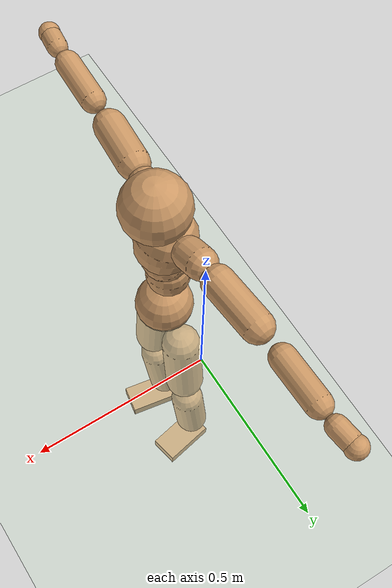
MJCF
<mujoco model="humanoid">
  <compiler coordinate="local"/>
  <default>
    <joint damping="0.0" armature="0.01" stiffness="0.0" limited="true"/>
    <geom conaffinity="1" condim="3" contype="7" margin="0.001" rgba="0.8 0.6 .4 1"/>
  </default>
  <asset>
    <texture type="skybox" builtin="gradient" rgb1=".4 .5 .6" rgb2="0 0 0" width="100" height="100"/>
    <texture builtin="flat" height="1278" mark="cross" markrgb="1 1 1" name="texgeom" random="0.01" rgb1="0.8 0.6 0.4" rgb2="0.8 0.6 0.4" type="cube" width="127"/>
    <texture builtin="checker" height="100" name="texplane" rgb1="0 0 0" rgb2="0.8 0.8 0.8" type="2d" width="100"/>
    <material name="MatPlane" reflectance="0.5" shininess="1" specular="1" texrepeat="60 60" texture="texplane"/>
    <material name="geom" texture="texgeom" texuniform="true"/>
  </asset>
  <worldbody>
    <light cutoff="100" diffuse="1 1 1" dir="-0 0 -1.3" directional="true" exponent="1" pos="0 0 1.3" specular=".1 .1 .1"/>
    <geom conaffinity="1" condim="3" name="floor" pos="0 0 0" rgba="0.8 0.9 0.8 1" size="100 100 .2" type="plane" material="MatPlane"/>
    <body name="Pelvis" pos="-0.0027 -0.1978 0.0166">
      <freejoint name="Pelvis"/>
      <geom type="sphere" contype="1" conaffinity="1" density="500" size="0.0830" pos="0.0000 0.0000 0.0000" name="Pelvis"/>
      <body name="L_Hip" pos="-0.0127 0.0625 -0.0852">
        <joint name="L_Hip_x" type="hinge" pos="0 0 0" axis="1 0 0" stiffness="800" damping="80" armature="0.02" range="-180.0000 180.0000"/>
        <joint name="L_Hip_y" type="hinge" pos="0 0 0" axis="0 1 0" stiffness="800" damping="80" armature="0.02" range="-180.0000 180.0000"/>
        <joint name="L_Hip_z" type="hinge" pos="0 0 0" axis="0 0 1" stiffness="800" damping="80" armature="0.02" range="-180.0000 180.0000"/>
        <geom type="capsule" contype="1" conaffinity="1" density="500" fromto="-0.0001 0.0068 -0.0724 -0.0002 0.0272 -0.2896" size="0.0571" name="L_Hip"/>
        <body name="L_Knee" pos="-0.0003 0.034 -0.362">
          <joint name="L_Knee_x" type="hinge" pos="0 0 0" axis="1 0 0" stiffness="800" damping="80" armature="0.02" range="-180.0000 180.0000"/>
          <joint name="L_Knee_y" type="hinge" pos="0 0 0" axis="0 1 0" stiffness="800" damping="80" armature="0.02" range="-180.0000 180.0000"/>
          <joint name="L_Knee_z" type="hinge" pos="0 0 0" axis="0 0 1" stiffness="800" damping="80" armature="0.02" range="-180.0000 180.0000"/>
          <geom type="capsule" contype="1" conaffinity="1" density="500" fromto="-0.0079 -0.0023 -0.0747 -0.0316 -0.0092 -0.2987" size="0.0496" name="L_Knee"/>
          <body name="L_Ankle" pos="-0.0395 -0.0116 -0.3734">
            <joint name="L_Ankle_x" type="hinge" pos="0 0 0" axis="1 0 0" stiffness="800" damping="80" armature="0.02" range="-180.0000 180.0000"/>
            <joint name="L_Ankle_y" type="hinge" pos="0 0 0" axis="0 1 0" stiffness="800" damping="80" armature="0.02" range="-180.0000 180.0000"/>
            <joint name="L_Ankle_z" type="hinge" pos="0 0 0" axis="0 0 1" stiffness="800" damping="80" armature="0.02" range="-180.0000 180.0000"/>
            <geom type="box" contype="1" conaffinity="1" density="500" pos="0.0553 0.0112 -0.0260" size="0.0795 0.0432 0.0188" quat="0.9950 0.0000 0.0000 0.0997" name="L_Ankle"/>
            <body name="L_Toe" pos="0.1107 0.0224 -0.052">
              <joint name="L_Toe_x" type="hinge" pos="0 0 0" axis="1 0 0" stiffness="500" damping="50" armature="0.02" range="-180.0000 180.0000"/>
              <joint name="L_Toe_y" type="hinge" pos="0 0 0" axis="0 1 0" stiffness="500" damping="50" armature="0.02" range="-180.0000 180.0000"/>
              <joint name="L_Toe_z" type="hinge" pos="0 0 0" axis="0 0 1" stiffness="500" damping="50" armature="0.02" range="-180.0000 180.0000"/>
              <geom type="box" contype="1" conaffinity="1" density="500" pos="0.0000 0.0000 0.0255" size="0.0009 0.0022 0.0009" quat="0.9943 0.0000 0.0000 0.1065" name="L_Toe"/>
            </body>
          </body>
        </body>
      </body>
      <body name="R_Hip" pos="-0.0098 -0.0609 -0.0843">
        <joint name="R_Hip_x" type="hinge" pos="0 0 0" axis="1 0 0" stiffness="800" damping="80" armature="0.02" range="-180.0000 180.0000"/>
        <joint name="R_Hip_y" type="hinge" pos="0 0 0" axis="0 1 0" stiffness="800" damping="80" armature="0.02" range="-180.0000 180.0000"/>
        <joint name="R_Hip_z" type="hinge" pos="0 0 0" axis="0 0 1" stiffness="800" damping="80" armature="0.02" range="-180.0000 180.0000"/>
        <geom type="capsule" contype="1" conaffinity="1" density="500" fromto="-0.0009 -0.0075 -0.0736 -0.0035 -0.0299 -0.2942" size="0.0563" name="R_Hip"/>
        <body name="R_Knee" pos="-0.0044 -0.0373 -0.3678">
          <joint name="R_Knee_x" type="hinge" pos="0 0 0" axis="1 0 0" stiffness="800" damping="80" armature="0.02" range="-180.0000 180.0000"/>
          <joint name="R_Knee_y" type="hinge" pos="0 0 0" axis="0 1 0" stiffness="800" damping="80" armature="0.02" range="-180.0000 180.0000"/>
          <joint name="R_Knee_z" type="hinge" pos="0 0 0" axis="0 0 1" stiffness="800" damping="80" armature="0.02" range="-180.0000 180.0000"/>
          <geom type="capsule" contype="1" conaffinity="1" density="500" fromto="-0.0076 0.0028 -0.0744 -0.0305 0.0112 -0.2975" size="0.0499" name="R_Knee"/>
          <body name="R_Ankle" pos="-0.0381 0.0141 -0.3719">
            <joint name="R_Ankle_x" type="hinge" pos="0 0 0" axis="1 0 0" stiffness="800" damping="80" armature="0.02" range="-180.0000 180.0000"/>
            <joint name="R_Ankle_y" type="hinge" pos="0 0 0" axis="0 1 0" stiffness="800" damping="80" armature="0.02" range="-180.0000 180.0000"/>
            <joint name="R_Ankle_z" type="hinge" pos="0 0 0" axis="0 0 1" stiffness="800" damping="80" armature="0.02" range="-180.0000 180.0000"/>
            <geom type="box" contype="1" conaffinity="1" density="500" pos="0.0570 -0.0095 -0.0220" size="0.0808 0.044 0.0185" quat="0.9966 0.0000 0.0000 -0.0827" name="R_Ankle"/>
            <body name="R_Toe" pos="0.1141 -0.0191 -0.044">
              <joint name="R_Toe_x" type="hinge" pos="0 0 0" axis="1 0 0" stiffness="500" damping="50" armature="0.02" range="-180.0000 180.0000"/>
              <joint name="R_Toe_y" type="hinge" pos="0 0 0" axis="0 1 0" stiffness="500" damping="50" armature="0.02" range="-180.0000 180.0000"/>
              <joint name="R_Toe_z" type="hinge" pos="0 0 0" axis="0 0 1" stiffness="500" damping="50" armature="0.02" range="-180.0000 180.0000"/>
              <geom type="box" contype="1" conaffinity="1" density="500" pos="0.0000 0.0000 0.0239" size="0.0008 0.0022 0.001" quat="0.9973 0.0000 0.0000 -0.0729" name="R_Toe"/>
            </body>
          </body>
        </body>
      </body>
      <body name="Torso" pos="-0.0156 -0.0026 0.0987">
        <joint name="Torso_x" type="hinge" pos="0 0 0" axis="1 0 0" stiffness="1000" damping="100" armature="0.02" range="-180.0000 180.0000"/>
        <joint name="Torso_y" type="hinge" pos="0 0 0" axis="0 1 0" stiffness="1000" damping="100" armature="0.02" range="-180.0000 180.0000"/>
        <joint name="Torso_z" type="hinge" pos="0 0 0" axis="0 0 1" stiffness="1000" damping="100" armature="0.02" range="-180.0000 180.0000"/>
        <geom type="capsule" contype="1" conaffinity="1" density="500" fromto="0.0013 0.0028 0.0777 0.0009 0.0018 0.0518" size="0.0617" name="Torso"/>
        <body name="Spine" pos="0.0021 0.0046 0.1295">
          <joint name="Spine_x" type="hinge" pos="0 0 0" axis="1 0 0" stiffness="1000" damping="100" armature="0.02" range="-180.0000 180.0000"/>
          <joint name="Spine_y" type="hinge" pos="0 0 0" axis="0 1 0" stiffness="1000" damping="100" armature="0.02" range="-180.0000 180.0000"/>
          <joint name="Spine_z" type="hinge" pos="0 0 0" axis="0 0 1" stiffness="1000" damping="100" armature="0.02" range="-180.0000 180.0000"/>
          <geom type="capsule" contype="1" conaffinity="1" density="500" fromto="0.0139 0.0014 0.0283 0.0093 0.0009 0.0189" size="0.0619" name="Spine"/>
          <body name="Chest" pos="0.0232 0.0023 0.0472">
            <joint name="Chest_x" type="hinge" pos="0 0 0" axis="1 0 0" stiffness="1000" damping="100" armature="0.02" range="-180.0000 180.0000"/>
            <joint name="Chest_y" type="hinge" pos="0 0 0" axis="0 1 0" stiffness="1000" damping="100" armature="0.02" range="-180.0000 180.0000"/>
            <joint name="Chest_z" type="hinge" pos="0 0 0" axis="0 0 1" stiffness="1000" damping="100" armature="0.02" range="-180.0000 180.0000"/>
            <geom type="capsule" contype="1" conaffinity="1" density="500" fromto="-0.0193 -0.0009 0.0784 -0.0129 -0.0006 0.0522" size="0.0833" name="Chest"/>
            <body name="Neck" pos="-0.0349 -0.0028 0.1838">
              <joint name="Neck_x" type="hinge" pos="0 0 0" axis="1 0 0" stiffness="500" damping="50" armature="0.02" range="-180.0000 180.0000"/>
              <joint name="Neck_y" type="hinge" pos="0 0 0" axis="0 1 0" stiffness="500" damping="50" armature="0.02" range="-180.0000 180.0000"/>
              <joint name="Neck_z" type="hinge" pos="0 0 0" axis="0 0 1" stiffness="500" damping="50" armature="0.02" range="-180.0000 180.0000"/>
              <geom type="capsule" contype="1" conaffinity="1" density="500" fromto="0.0095 0.0010 0.0120 0.0382 0.0039 0.0481" size="0.0382" name="Neck"/>
              <body name="Head" pos="0.0477 0.0048 0.0601">
                <joint name="Head_x" type="hinge" pos="0 0 0" axis="1 0 0" stiffness="500" damping="50" armature="0.02" range="-180.0000 180.0000"/>
                <joint name="Head_y" type="hinge" pos="0 0 0" axis="0 1 0" stiffness="500" damping="50" armature="0.02" range="-180.0000 180.0000"/>
                <joint name="Head_z" type="hinge" pos="0 0 0" axis="0 0 1" stiffness="500" damping="50" armature="0.02" range="-180.0000 180.0000"/>
                <geom type="sphere" contype="1" conaffinity="1" density="500" size="0.0937" pos="0.0000 0.0000 0.0000" name="Head"/>
              </body>
            </body>
            <body name="L_Thorax" pos="-0.0287 0.0692 0.1052">
              <joint name="L_Thorax_x" type="hinge" pos="0 0 0" axis="1 0 0" stiffness="500" damping="50" armature="0.02" range="-180.0000 180.0000"/>
              <joint name="L_Thorax_y" type="hinge" pos="0 0 0" axis="0 1 0" stiffness="500" damping="50" armature="0.02" range="-180.0000 180.0000"/>
              <joint name="L_Thorax_z" type="hinge" pos="0 0 0" axis="0 0 1" stiffness="500" damping="50" armature="0.02" range="-180.0000 180.0000"/>
              <geom type="capsule" contype="1" conaffinity="1" density="500" fromto="-0.0012 0.0161 0.0061 -0.0048 0.0644 0.0245" size="0.0447" name="L_Thorax"/>
              <body name="L_Shoulder" pos="-0.0059 0.0805 0.0307">
                <joint name="L_Shoulder_x" type="hinge" pos="0 0 0" axis="1 0 0" stiffness="500" damping="50" armature="0.02" range="-720.0000 720.0000"/>
                <joint name="L_Shoulder_y" type="hinge" pos="0 0 0" axis="0 1 0" stiffness="500" damping="50" armature="0.02" range="-720.0000 720.0000"/>
                <joint name="L_Shoulder_z" type="hinge" pos="0 0 0" axis="0 0 1" stiffness="500" damping="50" armature="0.02" range="-720.0000 720.0000"/>
                <geom type="capsule" contype="1" conaffinity="1" density="500" fromto="-0.0052 0.0488 -0.0027 -0.0207 0.1951 -0.0107" size="0.0443" name="L_Shoulder"/>
                <body name="L_Elbow" pos="-0.0259 0.2439 -0.0134">
                  <joint name="L_Elbow_x" type="hinge" pos="0 0 0" axis="1 0 0" stiffness="500" damping="50" armature="0.02" range="-720.0000 720.0000"/>
                  <joint name="L_Elbow_y" type="hinge" pos="0 0 0" axis="0 1 0" stiffness="500" damping="50" armature="0.02" range="-720.0000 720.0000"/>
                  <joint name="L_Elbow_z" type="hinge" pos="0 0 0" axis="0 0 1" stiffness="500" damping="50" armature="0.02" range="-720.0000 720.0000"/>
                  <geom type="capsule" contype="1" conaffinity="1" density="500" fromto="-0.0005 0.0469 0.0017 -0.0019 0.1875 0.0067" size="0.0354" name="L_Elbow"/>
                  <body name="L_Wrist" pos="-0.0023 0.2344 0.0084">
                    <joint name="L_Wrist_x" type="hinge" pos="0 0 0" axis="1 0 0" stiffness="300" damping="30" armature="0.02" range="-180.0000 180.0000"/>
                    <joint name="L_Wrist_y" type="hinge" pos="0 0 0" axis="0 1 0" stiffness="300" damping="30" armature="0.02" range="-180.0000 180.0000"/>
                    <joint name="L_Wrist_z" type="hinge" pos="0 0 0" axis="0 0 1" stiffness="300" damping="30" armature="0.02" range="-180.0000 180.0000"/>
                    <geom type="capsule" contype="1" conaffinity="1" density="500" fromto="-0.0027 0.0154 -0.0018 -0.0106 0.0614 -0.0071" size="0.0287" name="L_Wrist"/>
                    <body name="L_Hand" pos="-0.0133 0.0768 -0.0089">
                      <joint name="L_Hand_x" type="hinge" pos="0 0 0" axis="1 0 0" stiffness="300" damping="30" armature="0.02" range="-180.0000 180.0000"/>
                      <joint name="L_Hand_y" type="hinge" pos="0 0 0" axis="0 1 0" stiffness="300" damping="30" armature="0.02" range="-180.0000 180.0000"/>
                      <joint name="L_Hand_z" type="hinge" pos="0 0 0" axis="0 0 1" stiffness="300" damping="30" armature="0.02" range="-180.0000 180.0000"/>
                      <geom type="sphere" contype="1" conaffinity="1" density="500" size="0.0309" pos="0.0000 0.0000 0.0000" name="L_Hand"/>
                    </body>
                  </body>
                </body>
              </body>
            </body>
            <body name="R_Thorax" pos="-0.0331 -0.071 0.1027">
              <joint name="R_Thorax_x" type="hinge" pos="0 0 0" axis="1 0 0" stiffness="500" damping="50" armature="0.02" range="-180.0000 180.0000"/>
              <joint name="R_Thorax_y" type="hinge" pos="0 0 0" axis="0 1 0" stiffness="500" damping="50" armature="0.02" range="-180.0000 180.0000"/>
              <joint name="R_Thorax_z" type="hinge" pos="0 0 0" axis="0 0 1" stiffness="500" damping="50" armature="0.02" range="-180.0000 180.0000"/>
              <geom type="capsule" contype="1" conaffinity="1" density="500" fromto="-0.0017 -0.0169 0.0062 -0.0067 -0.0677 0.0247" size="0.0438" name="R_Thorax"/>
              <body name="R_Shoulder" pos="-0.0084 -0.0846 0.0309">
                <joint name="R_Shoulder_x" type="hinge" pos="0 0 0" axis="1 0 0" stiffness="500" damping="50" armature="0.02" range="-720.0000 720.0000"/>
                <joint name="R_Shoulder_y" type="hinge" pos="0 0 0" axis="0 1 0" stiffness="500" damping="50" armature="0.02" range="-720.0000 720.0000"/>
                <joint name="R_Shoulder_z" type="hinge" pos="0 0 0" axis="0 0 1" stiffness="500" damping="50" armature="0.02" range="-720.0000 720.0000"/>
                <geom type="capsule" contype="1" conaffinity="1" density="500" fromto="-0.0036 -0.0472 -0.0024 -0.0146 -0.1886 -0.0098" size="0.0454" name="R_Shoulder"/>
                <body name="R_Elbow" pos="-0.0182 -0.2358 -0.0122">
                  <joint name="R_Elbow_x" type="hinge" pos="0 0 0" axis="1 0 0" stiffness="500" damping="50" armature="0.02" range="-720.0000 720.0000"/>
                  <joint name="R_Elbow_y" type="hinge" pos="0 0 0" axis="0 1 0" stiffness="500" damping="50" armature="0.02" range="-720.0000 720.0000"/>
                  <joint name="R_Elbow_z" type="hinge" pos="0 0 0" axis="0 0 1" stiffness="500" damping="50" armature="0.02" range="-720.0000 720.0000"/>
                  <geom type="capsule" contype="1" conaffinity="1" density="500" fromto="-0.0012 -0.0481 0.0014 -0.0047 -0.1923 0.0055" size="0.0354" name="R_Elbow"/>
                  <body name="R_Wrist" pos="-0.0059 -0.2403 0.0068">
                    <joint name="R_Wrist_x" type="hinge" pos="0 0 0" axis="1 0 0" stiffness="300" damping="30" armature="0.02" range="-180.0000 180.0000"/>
                    <joint name="R_Wrist_y" type="hinge" pos="0 0 0" axis="0 1 0" stiffness="300" damping="30" armature="0.02" range="-180.0000 180.0000"/>
                    <joint name="R_Wrist_z" type="hinge" pos="0 0 0" axis="0 0 1" stiffness="300" damping="30" armature="0.02" range="-180.0000 180.0000"/>
                    <geom type="capsule" contype="1" conaffinity="1" density="500" fromto="-0.0020 -0.0153 -0.0013 -0.0078 -0.0613 -0.0052" size="0.0292" name="R_Wrist"/>
                    <body name="R_Hand" pos="-0.0098 -0.0767 -0.0065">
                      <joint name="R_Hand_x" type="hinge" pos="0 0 0" axis="1 0 0" stiffness="300" damping="30" armature="0.02" range="-180.0000 180.0000"/>
                      <joint name="R_Hand_y" type="hinge" pos="0 0 0" axis="0 1 0" stiffness="300" damping="30" armature="0.02" range="-180.0000 180.0000"/>
                      <joint name="R_Hand_z" type="hinge" pos="0 0 0" axis="0 0 1" stiffness="300" damping="30" armature="0.02" range="-180.0000 180.0000"/>
                      <geom type="sphere" contype="1" conaffinity="1" density="500" size="0.0308" pos="0.0000 0.0000 0.0000" name="R_Hand"/>
                    </body>
                  </body>
                </body>
              </body>
            </body>
          </body>
        </body>
      </body>
    </body>
  </worldbody>
  <actuator>
    <motor name="L_Hip_x" joint="L_Hip_x" gear="500"/>
    <motor name="L_Hip_y" joint="L_Hip_y" gear="500"/>
    <motor name="L_Hip_z" joint="L_Hip_z" gear="500"/>
    <motor name="L_Knee_x" joint="L_Knee_x" gear="500"/>
    <motor name="L_Knee_y" joint="L_Knee_y" gear="500"/>
    <motor name="L_Knee_z" joint="L_Knee_z" gear="500"/>
    <motor name="L_Ankle_x" joint="L_Ankle_x" gear="500"/>
    <motor name="L_Ankle_y" joint="L_Ankle_y" gear="500"/>
    <motor name="L_Ankle_z" joint="L_Ankle_z" gear="500"/>
    <motor name="L_Toe_x" joint="L_Toe_x" gear="500"/>
    <motor name="L_Toe_y" joint="L_Toe_y" gear="500"/>
    <motor name="L_Toe_z" joint="L_Toe_z" gear="500"/>
    <motor name="R_Hip_x" joint="R_Hip_x" gear="500"/>
    <motor name="R_Hip_y" joint="R_Hip_y" gear="500"/>
    <motor name="R_Hip_z" joint="R_Hip_z" gear="500"/>
    <motor name="R_Knee_x" joint="R_Knee_x" gear="500"/>
    <motor name="R_Knee_y" joint="R_Knee_y" gear="500"/>
    <motor name="R_Knee_z" joint="R_Knee_z" gear="500"/>
    <motor name="R_Ankle_x" joint="R_Ankle_x" gear="500"/>
    <motor name="R_Ankle_y" joint="R_Ankle_y" gear="500"/>
    <motor name="R_Ankle_z" joint="R_Ankle_z" gear="500"/>
    <motor name="R_Toe_x" joint="R_Toe_x" gear="500"/>
    <motor name="R_Toe_y" joint="R_Toe_y" gear="500"/>
    <motor name="R_Toe_z" joint="R_Toe_z" gear="500"/>
    <motor name="Torso_x" joint="Torso_x" gear="500"/>
    <motor name="Torso_y" joint="Torso_y" gear="500"/>
    <motor name="Torso_z" joint="Torso_z" gear="500"/>
    <motor name="Spine_x" joint="Spine_x" gear="500"/>
    <motor name="Spine_y" joint="Spine_y" gear="500"/>
    <motor name="Spine_z" joint="Spine_z" gear="500"/>
    <motor name="Chest_x" joint="Chest_x" gear="500"/>
    <motor name="Chest_y" joint="Chest_y" gear="500"/>
    <motor name="Chest_z" joint="Chest_z" gear="500"/>
    <motor name="Neck_x" joint="Neck_x" gear="500"/>
    <motor name="Neck_y" joint="Neck_y" gear="500"/>
    <motor name="Neck_z" joint="Neck_z" gear="500"/>
    <motor name="Head_x" joint="Head_x" gear="500"/>
    <motor name="Head_y" joint="Head_y" gear="500"/>
    <motor name="Head_z" joint="Head_z" gear="500"/>
    <motor name="L_Thorax_x" joint="L_Thorax_x" gear="500"/>
    <motor name="L_Thorax_y" joint="L_Thorax_y" gear="500"/>
    <motor name="L_Thorax_z" joint="L_Thorax_z" gear="500"/>
    <motor name="L_Shoulder_x" joint="L_Shoulder_x" gear="500"/>
    <motor name="L_Shoulder_y" joint="L_Shoulder_y" gear="500"/>
    <motor name="L_Shoulder_z" joint="L_Shoulder_z" gear="500"/>
    <motor name="L_Elbow_x" joint="L_Elbow_x" gear="500"/>
    <motor name="L_Elbow_y" joint="L_Elbow_y" gear="500"/>
    <motor name="L_Elbow_z" joint="L_Elbow_z" gear="500"/>
    <motor name="L_Wrist_x" joint="L_Wrist_x" gear="500"/>
    <motor name="L_Wrist_y" joint="L_Wrist_y" gear="500"/>
    <motor name="L_Wrist_z" joint="L_Wrist_z" gear="500"/>
    <motor name="L_Hand_x" joint="L_Hand_x" gear="500"/>
    <motor name="L_Hand_y" joint="L_Hand_y" gear="500"/>
    <motor name="L_Hand_z" joint="L_Hand_z" gear="500"/>
    <motor name="R_Thorax_x" joint="R_Thorax_x" gear="500"/>
    <motor name="R_Thorax_y" joint="R_Thorax_y" gear="500"/>
    <motor name="R_Thorax_z" joint="R_Thorax_z" gear="500"/>
    <motor name="R_Shoulder_x" joint="R_Shoulder_x" gear="500"/>
    <motor name="R_Shoulder_y" joint="R_Shoulder_y" gear="500"/>
    <motor name="R_Shoulder_z" joint="R_Shoulder_z" gear="500"/>
    <motor name="R_Elbow_x" joint="R_Elbow_x" gear="500"/>
    <motor name="R_Elbow_y" joint="R_Elbow_y" gear="500"/>
    <motor name="R_Elbow_z" joint="R_Elbow_z" gear="500"/>
    <motor name="R_Wrist_x" joint="R_Wrist_x" gear="500"/>
    <motor name="R_Wrist_y" joint="R_Wrist_y" gear="500"/>
    <motor name="R_Wrist_z" joint="R_Wrist_z" gear="500"/>
    <motor name="R_Hand_x" joint="R_Hand_x" gear="500"/>
    <motor name="R_Hand_y" joint="R_Hand_y" gear="500"/>
    <motor name="R_Hand_z" joint="R_Hand_z" gear="500"/>
  </actuator>
  <contact>
    <exclude body1="Torso" body2="Chest"/>
    <exclude body1="Head" body2="Chest"/>
    <exclude body1="R_Knee" body2="R_Toe"/>
    <exclude body1="R_Knee" body2="L_Ankle"/>
    <exclude body1="R_Knee" body2="L_Toe"/>
    <exclude body1="L_Knee" body2="L_Toe"/>
    <exclude body1="L_Knee" body2="R_Ankle"/>
    <exclude body1="L_Knee" body2="R_Toe"/>
    <exclude body1="L_Shoulder" body2="Chest"/>
    <exclude body1="R_Shoulder" body2="Chest"/>
  </contact>
  <sensor/>
  <size njmax="700" nconmax="700"/>
</mujoco>
